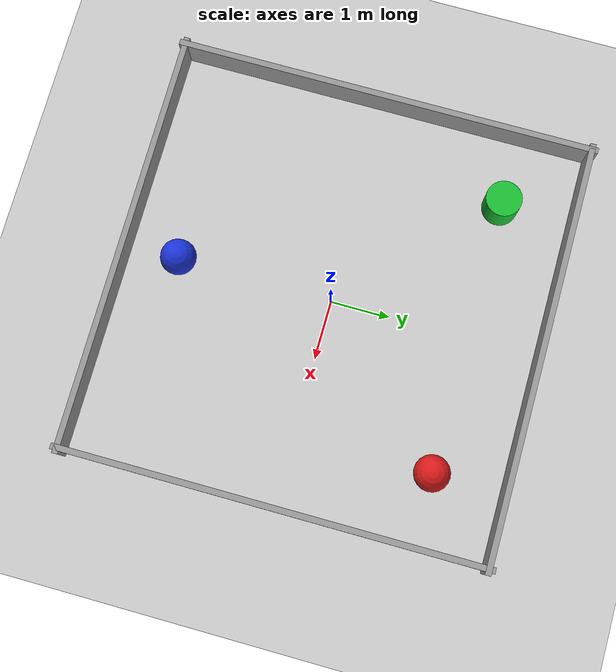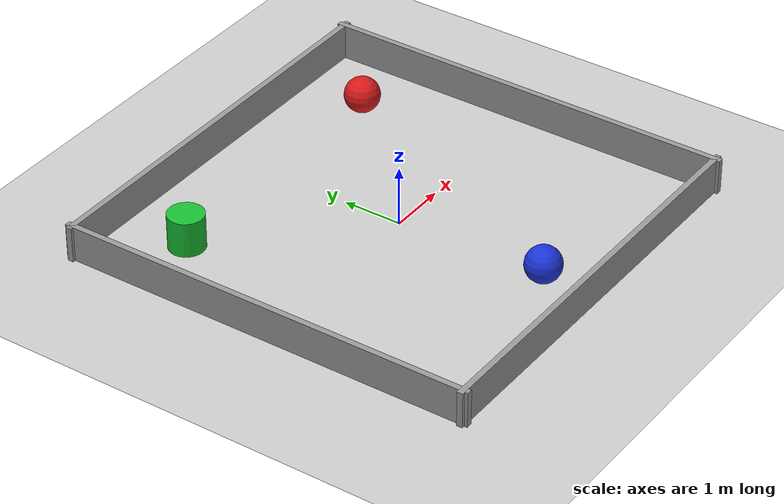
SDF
<?xml version="1.0"?>
<sdf version="1.6">
  <world name="default">
  <plugin
    filename="gz-sim-physics-system"
    name="gz::sim::systems::Physics">
  </plugin>
  <plugin
    filename="gz-sim-user-commands-system"
    name="gz::sim::systems::UserCommands">
  </plugin>
  <plugin
    filename="gz-sim-scene-broadcaster-system"
    name="gz::sim::systems::SceneBroadcaster">
  </plugin>
  <plugin
    filename="gz-sim-sensors-system"
    name="gz::sim::systems::Sensors">
    <render_engine>ogre2</render_engine>
  </plugin>
  <plugin
    filename="gz-sim-imu-system"
    name="gz::sim::systems::Imu">
  </plugin>

    <include>
      <uri>https://fuel.gazebosim.org/1.0/OpenRobotics/models/Ground Plane</uri>
    </include>

    <include>
      <uri>https://fuel.gazebosim.org/1.0/OpenRobotics/models/Sun</uri>
    </include>

    <scene>
      <shadows>false</shadows>
    </scene>

    <gui fullscreen='0'>
      <camera name='user_camera'>
        <pose frame=''>-1.0 -5.0 4.0 0 0.6 1.57</pose>
        <view_controller>orbit</view_controller>
        <projection_type>perspective</projection_type>
      </camera>
    </gui>

    <physics type="ode">
      <real_time_update_rate>1000.0</real_time_update_rate>
      <max_step_size>0.001</max_step_size>
      <real_time_factor>1</real_time_factor>
      <ode>
        <solver>
          <type>quick</type>
          <iters>150</iters>
          <precon_iters>0</precon_iters>
          <sor>1.400000</sor>
          <use_dynamic_moi_rescaling>1</use_dynamic_moi_rescaling>
        </solver>
        <constraints>
          <cfm>0.00001</cfm>
          <erp>0.2</erp>
          <contact_max_correcting_vel>2000.000000</contact_max_correcting_vel>
          <contact_surface_layer>0.01000</contact_surface_layer>
        </constraints>
      </ode>
    </physics>

    <!-- Arena walls: keep the robot inside a 7m x 7m square so the search
         pattern stays bounded and all three targets stay reachable. -->
    <model name="wall_north">
      <static>true</static>
      <pose>0 3.5 0.3 0 0 0</pose>
      <link name="link">
        <visual name="visual">
          <geometry><box><size>7.2 0.1 0.6</size></box></geometry>
          <material><ambient>0.6 0.6 0.6 1</ambient><diffuse>0.6 0.6 0.6 1</diffuse></material>
        </visual>
        <collision name="collision">
          <geometry><box><size>7.2 0.1 0.6</size></box></geometry>
        </collision>
      </link>
    </model>

    <model name="wall_south">
      <static>true</static>
      <pose>0 -3.5 0.3 0 0 0</pose>
      <link name="link">
        <visual name="visual">
          <geometry><box><size>7.2 0.1 0.6</size></box></geometry>
          <material><ambient>0.6 0.6 0.6 1</ambient><diffuse>0.6 0.6 0.6 1</diffuse></material>
        </visual>
        <collision name="collision">
          <geometry><box><size>7.2 0.1 0.6</size></box></geometry>
        </collision>
      </link>
    </model>

    <model name="wall_east">
      <static>true</static>
      <pose>3.5 0 0.3 0 0 1.5708</pose>
      <link name="link">
        <visual name="visual">
          <geometry><box><size>7.2 0.1 0.6</size></box></geometry>
          <material><ambient>0.6 0.6 0.6 1</ambient><diffuse>0.6 0.6 0.6 1</diffuse></material>
        </visual>
        <collision name="collision">
          <geometry><box><size>7.2 0.1 0.6</size></box></geometry>
        </collision>
      </link>
    </model>

    <model name="wall_west">
      <static>true</static>
      <pose>-3.5 0 0.3 0 0 1.5708</pose>
      <link name="link">
        <visual name="visual">
          <geometry><box><size>7.2 0.1 0.6</size></box></geometry>
          <material><ambient>0.6 0.6 0.6 1</ambient><diffuse>0.6 0.6 0.6 1</diffuse></material>
        </visual>
        <collision name="collision">
          <geometry><box><size>7.2 0.1 0.6</size></box></geometry>
        </collision>
      </link>
    </model>

    <model name="red_ball">
      <static>true</static>
      <pose>2.3 2.3 0.3 0 0 0</pose>
      <link name="link">
        <visual name="visual">
          <geometry><sphere><radius>0.3</radius></sphere></geometry>
          <material><ambient>0.85 0.1 0.1 1</ambient><diffuse>0.85 0.1 0.1 1</diffuse></material>
        </visual>
        <collision name="collision">
          <geometry><sphere><radius>0.3</radius></sphere></geometry>
        </collision>
      </link>
    </model>

    <model name="green_cylinder">
      <static>true</static>
      <pose>-2.3 2.3 0.3 0 0 0</pose>
      <link name="link">
        <visual name="visual">
          <geometry><cylinder><radius>0.3</radius><length>0.6</length></cylinder></geometry>
          <material><ambient>0.1 0.75 0.2 1</ambient><diffuse>0.1 0.75 0.2 1</diffuse></material>
        </visual>
        <collision name="collision">
          <geometry><cylinder><radius>0.3</radius><length>0.6</length></cylinder></geometry>
        </collision>
      </link>
    </model>

    <model name="blue_sphere">
      <static>true</static>
      <pose>0 -2.6 0.3 0 0 0</pose>
      <link name="link">
        <visual name="visual">
          <geometry><sphere><radius>0.3</radius></sphere></geometry>
          <material><ambient>0.1 0.2 0.85 1</ambient><diffuse>0.1 0.2 0.85 1</diffuse></material>
        </visual>
        <collision name="collision">
          <geometry><sphere><radius>0.3</radius></sphere></geometry>
        </collision>
      </link>
    </model>

  </world>
</sdf>
